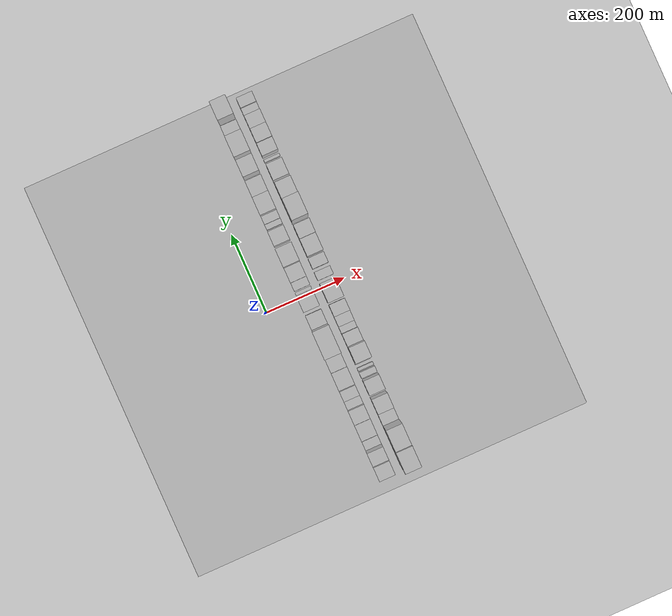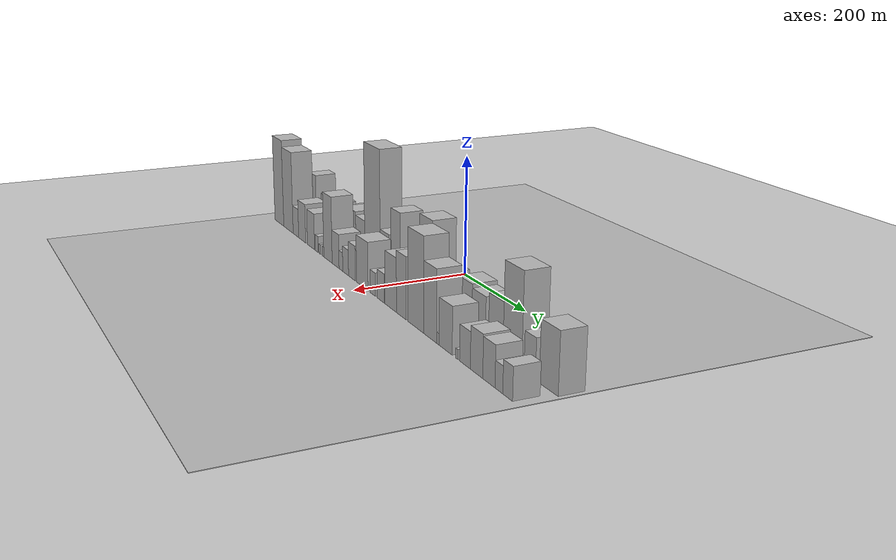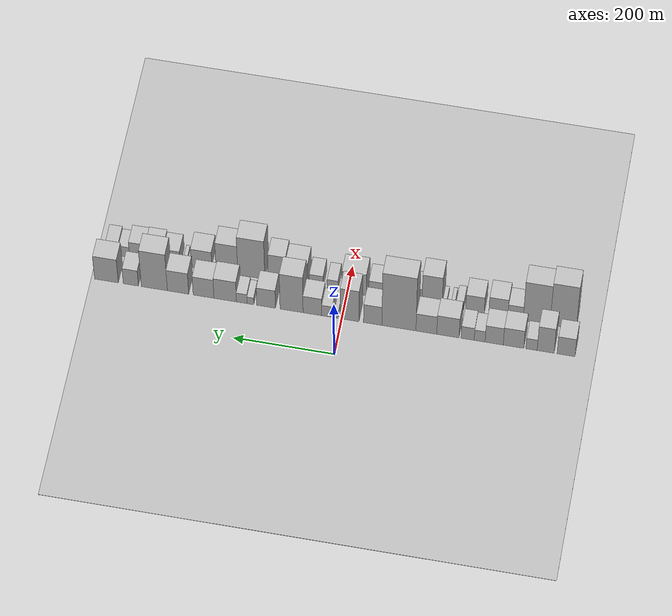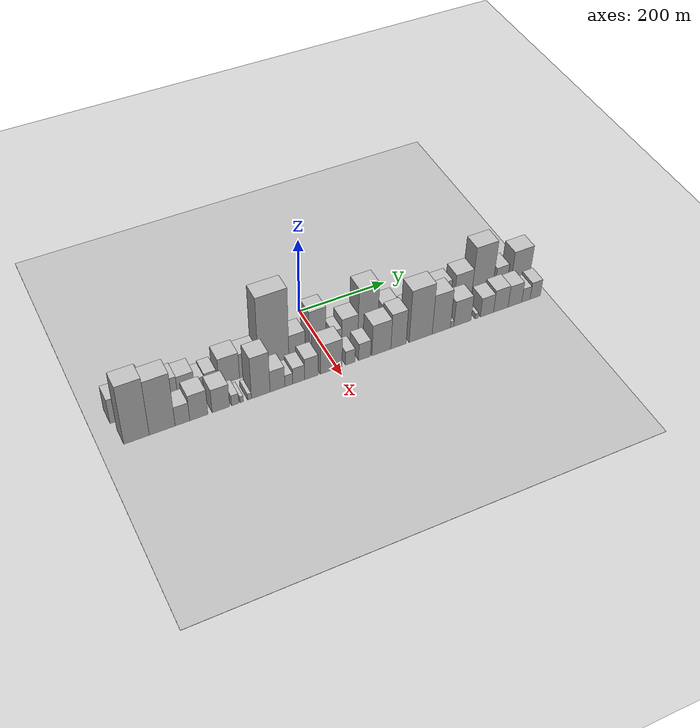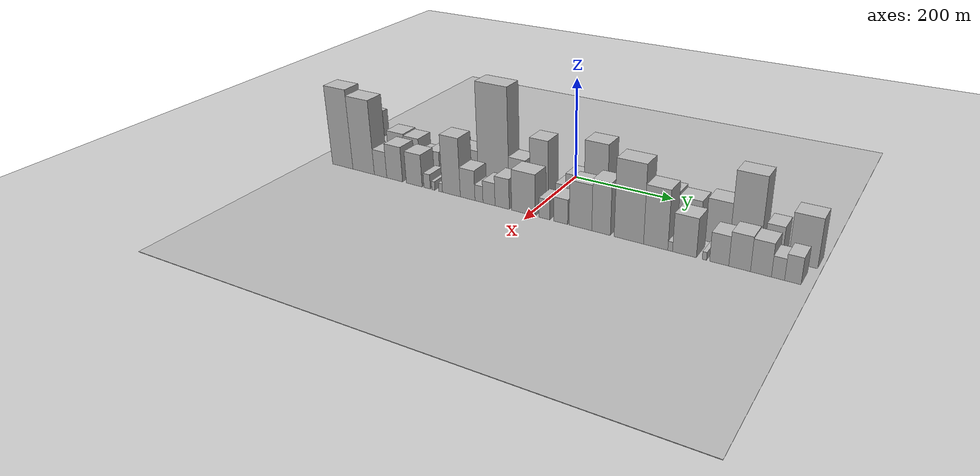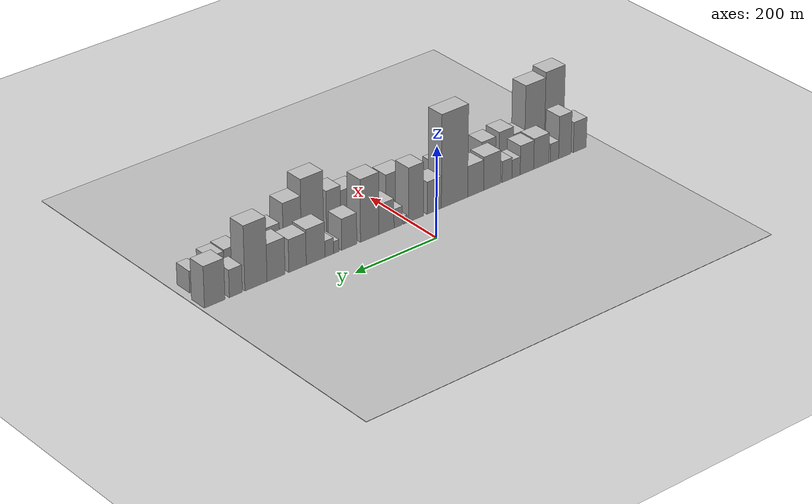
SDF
<sdf version="1.6">
 <world name="default">
  <include><name>ground_plane_1</name><uri>model://HANNAS_ground_plane</uri></include>
  <include>
   <name>ground_plane_2</name>
   <uri>model://HANNAS_ground_plane</uri>
   <pose>100 0 0  0 0 0</pose>
  </include>
  <model name="building_1">
   <static>1</static>
   <pose>100.0000 -442.4318 0 0.000000 0.000000 0.000000</pose>
   <link name="link">
    <pose>0 0 34.50 0 0 0</pose>
    <collision name="collision"><geometry><box><size>40.0000 35.1365 69.0000</size></box></geometry></collision>
    <visual name="visual">
     <cast_shadows>0</cast_shadows>
     <geometry><box><size>40.0000 35.1365 69.0000</size></box></geometry>
     <material>
      <script>
       <uri>model://HANNAS_wall/materials/scripts</uri>
       <uri>model://HANNAS_wall/materials/textures</uri>
       <name>vrc/HANNAS_wall</name>
      </script>
     </material>
    </visual>
   </link>
  </model>
  <model name="building_2">
   <static>1</static>
   <pose>100.0000 -402.2264 0 0.000000 0.000000 0.000000</pose>
   <link name="link">
    <pose>0 0 48.00 0 0 0</pose>
    <collision name="collision"><geometry><box><size>40.0000 33.2743 96.0000</size></box></geometry></collision>
    <visual name="visual">
     <cast_shadows>0</cast_shadows>
     <geometry><box><size>40.0000 33.2743 96.0000</size></box></geometry>
     <material>
      <script>
       <uri>model://HANNAS_wall/materials/scripts</uri>
       <uri>model://HANNAS_wall/materials/textures</uri>
       <name>vrc/HANNAS_wall</name>
      </script>
     </material>
    </visual>
   </link>
  </model>
  <model name="building_3">
   <static>1</static>
   <pose>100.0000 -374.4544 0 0.000000 0.000000 0.000000</pose>
   <link name="link">
    <pose>0 0 21.00 0 0 0</pose>
    <collision name="collision"><geometry><box><size>40.0000 22.2697 42.0000</size></box></geometry></collision>
    <visual name="visual">
     <cast_shadows>0</cast_shadows>
     <geometry><box><size>40.0000 22.2697 42.0000</size></box></geometry>
     <material>
      <script>
       <uri>model://HANNAS_wall/materials/scripts</uri>
       <uri>model://HANNAS_wall/materials/textures</uri>
       <name>vrc/HANNAS_wall</name>
      </script>
     </material>
    </visual>
   </link>
  </model>
  <model name="building_4">
   <static>1</static>
   <pose>100.0000 -339.1248 0 0.000000 0.000000 0.000000</pose>
   <link name="link">
    <pose>0 0 34.50 0 0 0</pose>
    <collision name="collision"><geometry><box><size>40.0000 40.3894 69.0000</size></box></geometry></collision>
    <visual name="visual">
     <cast_shadows>0</cast_shadows>
     <geometry><box><size>40.0000 40.3894 69.0000</size></box></geometry>
     <material>
      <script>
       <uri>model://HANNAS_wall/materials/scripts</uri>
       <uri>model://HANNAS_wall/materials/textures</uri>
       <name>vrc/HANNAS_wall</name>
      </script>
     </material>
    </visual>
   </link>
  </model>
  <model name="building_5">
   <static>1</static>
   <pose>100.0000 -301.0386 0 0.000000 0.000000 0.000000</pose>
   <link name="link">
    <pose>0 0 33.00 0 0 0</pose>
    <collision name="collision"><geometry><box><size>40.0000 35.7828 66.0000</size></box></geometry></collision>
    <visual name="visual">
     <cast_shadows>0</cast_shadows>
     <geometry><box><size>40.0000 35.7828 66.0000</size></box></geometry>
     <material>
      <script>
       <uri>model://HANNAS_wall/materials/scripts</uri>
       <uri>model://HANNAS_wall/materials/textures</uri>
       <name>vrc/HANNAS_wall</name>
      </script>
     </material>
    </visual>
   </link>
  </model>
  <model name="building_6">
   <static>1</static>
   <pose>100.0000 -272.4579 0 0.000000 0.000000 0.000000</pose>
   <link name="link">
    <pose>0 0 21.00 0 0 0</pose>
    <collision name="collision"><geometry><box><size>40.0000 21.3786 42.0000</size></box></geometry></collision>
    <visual name="visual">
     <cast_shadows>0</cast_shadows>
     <geometry><box><size>40.0000 21.3786 42.0000</size></box></geometry>
     <material>
      <script>
       <uri>model://HANNAS_wall/materials/scripts</uri>
       <uri>model://HANNAS_wall/materials/textures</uri>
       <name>vrc/HANNAS_wall</name>
      </script>
     </material>
    </visual>
   </link>
  </model>
  <model name="building_7">
   <static>1</static>
   <pose>100.0000 -248.8180 0 0.000000 0.000000 0.000000</pose>
   <link name="link">
    <pose>0 0 24.00 0 0 0</pose>
    <collision name="collision"><geometry><box><size>40.0000 25.9014 48.0000</size></box></geometry></collision>
    <visual name="visual">
     <cast_shadows>0</cast_shadows>
     <geometry><box><size>40.0000 25.9014 48.0000</size></box></geometry>
     <material>
      <script>
       <uri>model://HANNAS_wall/materials/scripts</uri>
       <uri>model://HANNAS_wall/materials/textures</uri>
       <name>vrc/HANNAS_wall</name>
      </script>
     </material>
    </visual>
   </link>
  </model>
  <model name="building_8">
   <static>1</static>
   <pose>100.0000 -209.7865 0 0.000000 0.000000 0.000000</pose>
   <link name="link">
    <pose>0 0 37.50 0 0 0</pose>
    <collision name="collision"><geometry><box><size>40.0000 44.1616 75.0000</size></box></geometry></collision>
    <visual name="visual">
     <cast_shadows>0</cast_shadows>
     <geometry><box><size>40.0000 44.1616 75.0000</size></box></geometry>
     <material>
      <script>
       <uri>model://HANNAS_wall/materials/scripts</uri>
       <uri>model://HANNAS_wall/materials/textures</uri>
       <name>vrc/HANNAS_wall</name>
      </script>
     </material>
    </visual>
   </link>
  </model>
  <model name="building_9">
   <static>1</static>
   <pose>100.0000 -167.1421 0 0.000000 0.000000 0.000000</pose>
   <link name="link">
    <pose>0 0 34.50 0 0 0</pose>
    <collision name="collision"><geometry><box><size>40.0000 41.1272 69.0000</size></box></geometry></collision>
    <visual name="visual">
     <cast_shadows>0</cast_shadows>
     <geometry><box><size>40.0000 41.1272 69.0000</size></box></geometry>
     <material>
      <script>
       <uri>model://HANNAS_wall/materials/scripts</uri>
       <uri>model://HANNAS_wall/materials/textures</uri>
       <name>vrc/HANNAS_wall</name>
      </script>
     </material>
    </visual>
   </link>
  </model>
  <model name="building_10">
   <static>1</static>
   <pose>100.0000 -112.8907 0 0.000000 0.000000 0.000000</pose>
   <link name="link">
    <pose>0 0 103.50 0 0 0</pose>
    <collision name="collision"><geometry><box><size>40.0000 67.3757 207.0000</size></box></geometry></collision>
    <visual name="visual">
     <cast_shadows>0</cast_shadows>
     <geometry><box><size>40.0000 67.3757 207.0000</size></box></geometry>
     <material>
      <script>
       <uri>model://HANNAS_wall/materials/scripts</uri>
       <uri>model://HANNAS_wall/materials/textures</uri>
       <name>vrc/HANNAS_wall</name>
      </script>
     </material>
    </visual>
   </link>
  </model>
  <model name="building_11">
   <static>1</static>
   <pose>100.0000 -61.0722 0 0.000000 0.000000 0.000000</pose>
   <link name="link">
    <pose>0 0 36.00 0 0 0</pose>
    <collision name="collision"><geometry><box><size>40.0000 36.2612 72.0000</size></box></geometry></collision>
    <visual name="visual">
     <cast_shadows>0</cast_shadows>
     <geometry><box><size>40.0000 36.2612 72.0000</size></box></geometry>
     <material>
      <script>
       <uri>model://HANNAS_wall/materials/scripts</uri>
       <uri>model://HANNAS_wall/materials/textures</uri>
       <name>vrc/HANNAS_wall</name>
      </script>
     </material>
    </visual>
   </link>
  </model>
  <model name="building_12">
   <static>1</static>
   <pose>100.0000 -15.1364 0 0.000000 0.000000 0.000000</pose>
   <link name="link">
    <pose>0 0 60.00 0 0 0</pose>
    <collision name="collision"><geometry><box><size>40.0000 37.6105 120.0000</size></box></geometry></collision>
    <visual name="visual">
     <cast_shadows>0</cast_shadows>
     <geometry><box><size>40.0000 37.6105 120.0000</size></box></geometry>
     <material>
      <script>
       <uri>model://HANNAS_wall/materials/scripts</uri>
       <uri>model://HANNAS_wall/materials/textures</uri>
       <name>vrc/HANNAS_wall</name>
      </script>
     </material>
    </visual>
   </link>
  </model>
  <model name="building_13">
   <static>1</static>
   <pose>100.0000 11.7699 0 0.000000 0.000000 0.000000</pose>
   <link name="link">
    <pose>0 0 9.00 0 0 0</pose>
    <collision name="collision"><geometry><box><size>40.0000 8.2020 18.0000</size></box></geometry></collision>
    <visual name="visual">
     <cast_shadows>0</cast_shadows>
     <geometry><box><size>40.0000 8.2020 18.0000</size></box></geometry>
     <material>
      <script>
       <uri>model://HANNAS_wall/materials/scripts</uri>
       <uri>model://HANNAS_wall/materials/textures</uri>
       <name>vrc/HANNAS_wall</name>
      </script>
     </material>
    </visual>
   </link>
  </model>
  <model name="building_14">
   <static>1</static>
   <pose>100.0000 29.4151 0 0.000000 0.000000 0.000000</pose>
   <link name="link">
    <pose>0 0 21.00 0 0 0</pose>
    <collision name="collision"><geometry><box><size>40.0000 21.0884 42.0000</size></box></geometry></collision>
    <visual name="visual">
     <cast_shadows>0</cast_shadows>
     <geometry><box><size>40.0000 21.0884 42.0000</size></box></geometry>
     <material>
      <script>
       <uri>model://HANNAS_wall/materials/scripts</uri>
       <uri>model://HANNAS_wall/materials/textures</uri>
       <name>vrc/HANNAS_wall</name>
      </script>
     </material>
    </visual>
   </link>
  </model>
  <model name="building_15">
   <static>1</static>
   <pose>100.0000 58.5209 0 0.000000 0.000000 0.000000</pose>
   <link name="link">
    <pose>0 0 33.00 0 0 0</pose>
    <collision name="collision"><geometry><box><size>40.0000 37.1232 66.0000</size></box></geometry></collision>
    <visual name="visual">
     <cast_shadows>0</cast_shadows>
     <geometry><box><size>40.0000 37.1232 66.0000</size></box></geometry>
     <material>
      <script>
       <uri>model://HANNAS_wall/materials/scripts</uri>
       <uri>model://HANNAS_wall/materials/textures</uri>
       <name>vrc/HANNAS_wall</name>
      </script>
     </material>
    </visual>
   </link>
  </model>
  <model name="building_16">
   <static>1</static>
   <pose>100.0000 99.9621 0 0.000000 0.000000 0.000000</pose>
   <link name="link">
    <pose>0 0 69.00 0 0 0</pose>
    <collision name="collision"><geometry><box><size>40.0000 45.7592 138.0000</size></box></geometry></collision>
    <visual name="visual">
     <cast_shadows>0</cast_shadows>
     <geometry><box><size>40.0000 45.7592 138.0000</size></box></geometry>
     <material>
      <script>
       <uri>model://HANNAS_wall/materials/scripts</uri>
       <uri>model://HANNAS_wall/materials/textures</uri>
       <name>vrc/HANNAS_wall</name>
      </script>
     </material>
    </visual>
   </link>
  </model>
  <model name="building_17">
   <static>1</static>
   <pose>100.0000 150.4226 0 0.000000 0.000000 0.000000</pose>
   <link name="link">
    <pose>0 0 34.50 0 0 0</pose>
    <collision name="collision"><geometry><box><size>40.0000 37.1618 69.0000</size></box></geometry></collision>
    <visual name="visual">
     <cast_shadows>0</cast_shadows>
     <geometry><box><size>40.0000 37.1618 69.0000</size></box></geometry>
     <material>
      <script>
       <uri>model://HANNAS_wall/materials/scripts</uri>
       <uri>model://HANNAS_wall/materials/textures</uri>
       <name>vrc/HANNAS_wall</name>
      </script>
     </material>
    </visual>
   </link>
  </model>
  <model name="building_18">
   <static>1</static>
   <pose>100.0000 181.7265 0 0.000000 0.000000 0.000000</pose>
   <link name="link">
    <pose>0 0 13.50 0 0 0</pose>
    <collision name="collision"><geometry><box><size>40.0000 13.4458 27.0000</size></box></geometry></collision>
    <visual name="visual">
     <cast_shadows>0</cast_shadows>
     <geometry><box><size>40.0000 13.4458 27.0000</size></box></geometry>
     <material>
      <script>
       <uri>model://HANNAS_wall/materials/scripts</uri>
       <uri>model://HANNAS_wall/materials/textures</uri>
       <name>vrc/HANNAS_wall</name>
      </script>
     </material>
    </visual>
   </link>
  </model>
  <model name="building_19">
   <static>1</static>
   <pose>100.0000 198.9371 0 0.000000 0.000000 0.000000</pose>
   <link name="link">
    <pose>0 0 18.00 0 0 0</pose>
    <collision name="collision"><geometry><box><size>40.0000 20.9755 36.0000</size></box></geometry></collision>
    <visual name="visual">
     <cast_shadows>0</cast_shadows>
     <geometry><box><size>40.0000 20.9755 36.0000</size></box></geometry>
     <material>
      <script>
       <uri>model://HANNAS_wall/materials/scripts</uri>
       <uri>model://HANNAS_wall/materials/textures</uri>
       <name>vrc/HANNAS_wall</name>
      </script>
     </material>
    </visual>
   </link>
  </model>
  <model name="building_20">
   <static>1</static>
   <pose>100.0000 231.9323 0 0.000000 0.000000 0.000000</pose>
   <link name="link">
    <pose>0 0 39.00 0 0 0</pose>
    <collision name="collision"><geometry><box><size>40.0000 45.0149 78.0000</size></box></geometry></collision>
    <visual name="visual">
     <cast_shadows>0</cast_shadows>
     <geometry><box><size>40.0000 45.0149 78.0000</size></box></geometry>
     <material>
      <script>
       <uri>model://HANNAS_wall/materials/scripts</uri>
       <uri>model://HANNAS_wall/materials/textures</uri>
       <name>vrc/HANNAS_wall</name>
      </script>
     </material>
    </visual>
   </link>
  </model>
  <model name="building_21">
   <static>1</static>
   <pose>100.0000 275.1344 0 0.000000 0.000000 0.000000</pose>
   <link name="link">
    <pose>0 0 36.00 0 0 0</pose>
    <collision name="collision"><geometry><box><size>40.0000 41.3893 72.0000</size></box></geometry></collision>
    <visual name="visual">
     <cast_shadows>0</cast_shadows>
     <geometry><box><size>40.0000 41.3893 72.0000</size></box></geometry>
     <material>
      <script>
       <uri>model://HANNAS_wall/materials/scripts</uri>
       <uri>model://HANNAS_wall/materials/textures</uri>
       <name>vrc/HANNAS_wall</name>
      </script>
     </material>
    </visual>
   </link>
  </model>
  <model name="building_22">
   <static>1</static>
   <pose>100.0000 326.0913 0 0.000000 0.000000 0.000000</pose>
   <link name="link">
    <pose>0 0 40.50 0 0 0</pose>
    <collision name="collision"><geometry><box><size>40.0000 42.5245 81.0000</size></box></geometry></collision>
    <visual name="visual">
     <cast_shadows>0</cast_shadows>
     <geometry><box><size>40.0000 42.5245 81.0000</size></box></geometry>
     <material>
      <script>
       <uri>model://HANNAS_wall/materials/scripts</uri>
       <uri>model://HANNAS_wall/materials/textures</uri>
       <name>vrc/HANNAS_wall</name>
      </script>
     </material>
    </visual>
   </link>
  </model>
  <model name="building_23">
   <static>1</static>
   <pose>100.0000 373.3401 0 0.000000 0.000000 0.000000</pose>
   <link name="link">
    <pose>0 0 70.50 0 0 0</pose>
    <collision name="collision"><geometry><box><size>40.0000 51.9733 141.0000</size></box></geometry></collision>
    <visual name="visual">
     <cast_shadows>0</cast_shadows>
     <geometry><box><size>40.0000 51.9733 141.0000</size></box></geometry>
     <material>
      <script>
       <uri>model://HANNAS_wall/materials/scripts</uri>
       <uri>model://HANNAS_wall/materials/textures</uri>
       <name>vrc/HANNAS_wall</name>
      </script>
     </material>
    </visual>
   </link>
  </model>
  <model name="building_24">
   <static>1</static>
   <pose>100.0000 420.4042 0 0.000000 0.000000 0.000000</pose>
   <link name="link">
    <pose>0 0 30.00 0 0 0</pose>
    <collision name="collision"><geometry><box><size>40.0000 30.1548 60.0000</size></box></geometry></collision>
    <visual name="visual">
     <cast_shadows>0</cast_shadows>
     <geometry><box><size>40.0000 30.1548 60.0000</size></box></geometry>
     <material>
      <script>
       <uri>model://HANNAS_wall/materials/scripts</uri>
       <uri>model://HANNAS_wall/materials/textures</uri>
       <name>vrc/HANNAS_wall</name>
      </script>
     </material>
    </visual>
   </link>
  </model>
  <model name="building_25">
   <static>1</static>
   <pose>100.0000 469.1745 0 0.000000 0.000000 0.000000</pose>
   <link name="link">
    <pose>0 0 45.00 0 0 0</pose>
    <collision name="collision"><geometry><box><size>40.0000 47.3858 90.0000</size></box></geometry></collision>
    <visual name="visual">
     <cast_shadows>0</cast_shadows>
     <geometry><box><size>40.0000 47.3858 90.0000</size></box></geometry>
     <material>
      <script>
       <uri>model://HANNAS_wall/materials/scripts</uri>
       <uri>model://HANNAS_wall/materials/textures</uri>
       <name>vrc/HANNAS_wall</name>
      </script>
     </material>
    </visual>
   </link>
  </model>
  <model name="building_26">
   <static>1</static>
   <pose>160.0000 -427.1325 0 0.000000 0.000000 0.000000</pose>
   <link name="link">
    <pose>0 0 82.50 0 0 0</pose>
    <collision name="collision"><geometry><box><size>40.0000 51.7349 165.0000</size></box></geometry></collision>
    <visual name="visual">
     <cast_shadows>0</cast_shadows>
     <geometry><box><size>40.0000 51.7349 165.0000</size></box></geometry>
     <material>
      <script>
       <uri>model://HANNAS_wall/materials/scripts</uri>
       <uri>model://HANNAS_wall/materials/textures</uri>
       <name>vrc/HANNAS_wall</name>
      </script>
     </material>
    </visual>
   </link>
  </model>
  <model name="building_27">
   <static>1</static>
   <pose>160.0000 -374.7211 0 0.000000 0.000000 0.000000</pose>
   <link name="link">
    <pose>0 0 76.50 0 0 0</pose>
    <collision name="collision"><geometry><box><size>40.0000 53.0879 153.0000</size></box></geometry></collision>
    <visual name="visual">
     <cast_shadows>0</cast_shadows>
     <geometry><box><size>40.0000 53.0879 153.0000</size></box></geometry>
     <material>
      <script>
       <uri>model://HANNAS_wall/materials/scripts</uri>
       <uri>model://HANNAS_wall/materials/textures</uri>
       <name>vrc/HANNAS_wall</name>
      </script>
     </material>
    </visual>
   </link>
  </model>
  <model name="building_28">
   <static>1</static>
   <pose>160.0000 -333.0660 0 0.000000 0.000000 0.000000</pose>
   <link name="link">
    <pose>0 0 27.00 0 0 0</pose>
    <collision name="collision"><geometry><box><size>40.0000 30.2224 54.0000</size></box></geometry></collision>
    <visual name="visual">
     <cast_shadows>0</cast_shadows>
     <geometry><box><size>40.0000 30.2224 54.0000</size></box></geometry>
     <material>
      <script>
       <uri>model://HANNAS_wall/materials/scripts</uri>
       <uri>model://HANNAS_wall/materials/textures</uri>
       <name>vrc/HANNAS_wall</name>
      </script>
     </material>
    </visual>
   </link>
  </model>
  <model name="building_29">
   <static>1</static>
   <pose>160.0000 -299.0715 0 0.000000 0.000000 0.000000</pose>
   <link name="link">
    <pose>0 0 36.00 0 0 0</pose>
    <collision name="collision"><geometry><box><size>40.0000 37.7665 72.0000</size></box></geometry></collision>
    <visual name="visual">
     <cast_shadows>0</cast_shadows>
     <geometry><box><size>40.0000 37.7665 72.0000</size></box></geometry>
     <material>
      <script>
       <uri>model://HANNAS_wall/materials/scripts</uri>
       <uri>model://HANNAS_wall/materials/textures</uri>
       <name>vrc/HANNAS_wall</name>
      </script>
     </material>
    </visual>
   </link>
  </model>
  <model name="building_30">
   <static>1</static>
   <pose>160.0000 -252.7341 0 0.000000 0.000000 0.000000</pose>
   <link name="link">
    <pose>0 0 33.00 0 0 0</pose>
    <collision name="collision"><geometry><box><size>40.0000 36.9082 66.0000</size></box></geometry></collision>
    <visual name="visual">
     <cast_shadows>0</cast_shadows>
     <geometry><box><size>40.0000 36.9082 66.0000</size></box></geometry>
     <material>
      <script>
       <uri>model://HANNAS_wall/materials/scripts</uri>
       <uri>model://HANNAS_wall/materials/textures</uri>
       <name>vrc/HANNAS_wall</name>
      </script>
     </material>
    </visual>
   </link>
  </model>
  <model name="building_31">
   <static>1</static>
   <pose>160.0000 -222.7568 0 0.000000 0.000000 0.000000</pose>
   <link name="link">
    <pose>0 0 15.00 0 0 0</pose>
    <collision name="collision"><geometry><box><size>40.0000 15.0465 30.0000</size></box></geometry></collision>
    <visual name="visual">
     <cast_shadows>0</cast_shadows>
     <geometry><box><size>40.0000 15.0465 30.0000</size></box></geometry>
     <material>
      <script>
       <uri>model://HANNAS_wall/materials/scripts</uri>
       <uri>model://HANNAS_wall/materials/textures</uri>
       <name>vrc/HANNAS_wall</name>
      </script>
     </material>
    </visual>
   </link>
  </model>
  <model name="building_32">
   <static>1</static>
   <pose>160.0000 -208.5569 0 0.000000 0.000000 0.000000</pose>
   <link name="link">
    <pose>0 0 9.00 0 0 0</pose>
    <collision name="collision"><geometry><box><size>40.0000 7.3534 18.0000</size></box></geometry></collision>
    <visual name="visual">
     <cast_shadows>0</cast_shadows>
     <geometry><box><size>40.0000 7.3534 18.0000</size></box></geometry>
     <material>
      <script>
       <uri>model://HANNAS_wall/materials/scripts</uri>
       <uri>model://HANNAS_wall/materials/textures</uri>
       <name>vrc/HANNAS_wall</name>
      </script>
     </material>
    </visual>
   </link>
  </model>
  <model name="building_33">
   <static>1</static>
   <pose>160.0000 -191.8985 0 0.000000 0.000000 0.000000</pose>
   <link name="link">
    <pose>0 0 9.00 0 0 0</pose>
    <collision name="collision"><geometry><box><size>40.0000 7.9632 18.0000</size></box></geometry></collision>
    <visual name="visual">
     <cast_shadows>0</cast_shadows>
     <geometry><box><size>40.0000 7.9632 18.0000</size></box></geometry>
     <material>
      <script>
       <uri>model://HANNAS_wall/materials/scripts</uri>
       <uri>model://HANNAS_wall/materials/textures</uri>
       <name>vrc/HANNAS_wall</name>
      </script>
     </material>
    </visual>
   </link>
  </model>
  <model name="building_34">
   <static>1</static>
   <pose>160.0000 -167.8837 0 0.000000 0.000000 0.000000</pose>
   <link name="link">
    <pose>0 0 58.50 0 0 0</pose>
    <collision name="collision"><geometry><box><size>40.0000 40.0664 117.0000</size></box></geometry></collision>
    <visual name="visual">
     <cast_shadows>0</cast_shadows>
     <geometry><box><size>40.0000 40.0664 117.0000</size></box></geometry>
     <material>
      <script>
       <uri>model://HANNAS_wall/materials/scripts</uri>
       <uri>model://HANNAS_wall/materials/textures</uri>
       <name>vrc/HANNAS_wall</name>
      </script>
     </material>
    </visual>
   </link>
  </model>
  <model name="building_35">
   <static>1</static>
   <pose>160.0000 -131.7753 0 0.000000 0.000000 0.000000</pose>
   <link name="link">
    <pose>0 0 30.00 0 0 0</pose>
    <collision name="collision"><geometry><box><size>40.0000 32.1505 60.0000</size></box></geometry></collision>
    <visual name="visual">
     <cast_shadows>0</cast_shadows>
     <geometry><box><size>40.0000 32.1505 60.0000</size></box></geometry>
     <material>
      <script>
       <uri>model://HANNAS_wall/materials/scripts</uri>
       <uri>model://HANNAS_wall/materials/textures</uri>
       <name>vrc/HANNAS_wall</name>
      </script>
     </material>
    </visual>
   </link>
  </model>
  <model name="building_36">
   <static>1</static>
   <pose>160.0000 -107.0788 0 0.000000 0.000000 0.000000</pose>
   <link name="link">
    <pose>0 0 16.50 0 0 0</pose>
    <collision name="collision"><geometry><box><size>40.0000 17.2424 33.0000</size></box></geometry></collision>
    <visual name="visual">
     <cast_shadows>0</cast_shadows>
     <geometry><box><size>40.0000 17.2424 33.0000</size></box></geometry>
     <material>
      <script>
       <uri>model://HANNAS_wall/materials/scripts</uri>
       <uri>model://HANNAS_wall/materials/textures</uri>
       <name>vrc/HANNAS_wall</name>
      </script>
     </material>
    </visual>
   </link>
  </model>
  <model name="building_37">
   <static>1</static>
   <pose>160.0000 -85.5093 0 0.000000 0.000000 0.000000</pose>
   <link name="link">
    <pose>0 0 22.50 0 0 0</pose>
    <collision name="collision"><geometry><box><size>40.0000 25.8966 45.0000</size></box></geometry></collision>
    <visual name="visual">
     <cast_shadows>0</cast_shadows>
     <geometry><box><size>40.0000 25.8966 45.0000</size></box></geometry>
     <material>
      <script>
       <uri>model://HANNAS_wall/materials/scripts</uri>
       <uri>model://HANNAS_wall/materials/textures</uri>
       <name>vrc/HANNAS_wall</name>
      </script>
     </material>
    </visual>
   </link>
  </model>
  <model name="building_38">
   <static>1</static>
   <pose>160.0000 -57.5142 0 0.000000 0.000000 0.000000</pose>
   <link name="link">
    <pose>0 0 30.00 0 0 0</pose>
    <collision name="collision"><geometry><box><size>40.0000 30.0936 60.0000</size></box></geometry></collision>
    <visual name="visual">
     <cast_shadows>0</cast_shadows>
     <geometry><box><size>40.0000 30.0936 60.0000</size></box></geometry>
     <material>
      <script>
       <uri>model://HANNAS_wall/materials/scripts</uri>
       <uri>model://HANNAS_wall/materials/textures</uri>
       <name>vrc/HANNAS_wall</name>
      </script>
     </material>
    </visual>
   </link>
  </model>
  <model name="building_39">
   <static>1</static>
   <pose>160.0000 -13.2434 0 0.000000 0.000000 0.000000</pose>
   <link name="link">
    <pose>0 0 40.50 0 0 0</pose>
    <collision name="collision"><geometry><box><size>40.0000 48.4478 81.0000</size></box></geometry></collision>
    <visual name="visual">
     <cast_shadows>0</cast_shadows>
     <geometry><box><size>40.0000 48.4478 81.0000</size></box></geometry>
     <material>
      <script>
       <uri>model://HANNAS_wall/materials/scripts</uri>
       <uri>model://HANNAS_wall/materials/textures</uri>
       <name>vrc/HANNAS_wall</name>
      </script>
     </material>
    </visual>
   </link>
  </model>
  <model name="building_40">
   <static>1</static>
   <pose>160.0000 29.7119 0 0.000000 0.000000 0.000000</pose>
   <link name="link">
    <pose>0 0 19.50 0 0 0</pose>
    <collision name="collision"><geometry><box><size>40.0000 21.4628 39.0000</size></box></geometry></collision>
    <visual name="visual">
     <cast_shadows>0</cast_shadows>
     <geometry><box><size>40.0000 21.4628 39.0000</size></box></geometry>
     <material>
      <script>
       <uri>model://HANNAS_wall/materials/scripts</uri>
       <uri>model://HANNAS_wall/materials/textures</uri>
       <name>vrc/HANNAS_wall</name>
      </script>
     </material>
    </visual>
   </link>
  </model>
  <model name="building_41">
   <static>1</static>
   <pose>160.0000 62.1125 0 0.000000 0.000000 0.000000</pose>
   <link name="link">
    <pose>0 0 24.00 0 0 0</pose>
    <collision name="collision"><geometry><box><size>40.0000 27.3385 48.0000</size></box></geometry></collision>
    <visual name="visual">
     <cast_shadows>0</cast_shadows>
     <geometry><box><size>40.0000 27.3385 48.0000</size></box></geometry>
     <material>
      <script>
       <uri>model://HANNAS_wall/materials/scripts</uri>
       <uri>model://HANNAS_wall/materials/textures</uri>
       <name>vrc/HANNAS_wall</name>
      </script>
     </material>
    </visual>
   </link>
  </model>
  <model name="building_42">
   <static>1</static>
   <pose>160.0000 100.5897 0 0.000000 0.000000 0.000000</pose>
   <link name="link">
    <pose>0 0 43.50 0 0 0</pose>
    <collision name="collision"><geometry><box><size>40.0000 43.6158 87.0000</size></box></geometry></collision>
    <visual name="visual">
     <cast_shadows>0</cast_shadows>
     <geometry><box><size>40.0000 43.6158 87.0000</size></box></geometry>
     <material>
      <script>
       <uri>model://HANNAS_wall/materials/scripts</uri>
       <uri>model://HANNAS_wall/materials/textures</uri>
       <name>vrc/HANNAS_wall</name>
      </script>
     </material>
    </visual>
   </link>
  </model>
  <model name="building_43">
   <static>1</static>
   <pose>160.0000 140.0172 0 0.000000 0.000000 0.000000</pose>
   <link name="link">
    <pose>0 0 49.50 0 0 0</pose>
    <collision name="collision"><geometry><box><size>40.0000 35.2392 99.0000</size></box></geometry></collision>
    <visual name="visual">
     <cast_shadows>0</cast_shadows>
     <geometry><box><size>40.0000 35.2392 99.0000</size></box></geometry>
     <material>
      <script>
       <uri>model://HANNAS_wall/materials/scripts</uri>
       <uri>model://HANNAS_wall/materials/textures</uri>
       <name>vrc/HANNAS_wall</name>
      </script>
     </material>
    </visual>
   </link>
  </model>
  <model name="building_44">
   <static>1</static>
   <pose>160.0000 191.6760 0 0.000000 0.000000 0.000000</pose>
   <link name="link">
    <pose>0 0 73.50 0 0 0</pose>
    <collision name="collision"><geometry><box><size>40.0000 54.0785 147.0000</size></box></geometry></collision>
    <visual name="visual">
     <cast_shadows>0</cast_shadows>
     <geometry><box><size>40.0000 54.0785 147.0000</size></box></geometry>
     <material>
      <script>
       <uri>model://HANNAS_wall/materials/scripts</uri>
       <uri>model://HANNAS_wall/materials/textures</uri>
       <name>vrc/HANNAS_wall</name>
      </script>
     </material>
    </visual>
   </link>
  </model>
  <model name="building_45">
   <static>1</static>
   <pose>160.0000 240.3611 0 0.000000 0.000000 0.000000</pose>
   <link name="link">
    <pose>0 0 55.50 0 0 0</pose>
    <collision name="collision"><geometry><box><size>40.0000 43.2916 111.0000</size></box></geometry></collision>
    <visual name="visual">
     <cast_shadows>0</cast_shadows>
     <geometry><box><size>40.0000 43.2916 111.0000</size></box></geometry>
     <material>
      <script>
       <uri>model://HANNAS_wall/materials/scripts</uri>
       <uri>model://HANNAS_wall/materials/textures</uri>
       <name>vrc/HANNAS_wall</name>
      </script>
     </material>
    </visual>
   </link>
  </model>
  <model name="building_46">
   <static>1</static>
   <pose>160.0000 266.1109 0 0.000000 0.000000 0.000000</pose>
   <link name="link">
    <pose>0 0 9.00 0 0 0</pose>
    <collision name="collision"><geometry><box><size>40.0000 8.2079 18.0000</size></box></geometry></collision>
    <visual name="visual">
     <cast_shadows>0</cast_shadows>
     <geometry><box><size>40.0000 8.2079 18.0000</size></box></geometry>
     <material>
      <script>
       <uri>model://HANNAS_wall/materials/scripts</uri>
       <uri>model://HANNAS_wall/materials/textures</uri>
       <name>vrc/HANNAS_wall</name>
      </script>
     </material>
    </visual>
   </link>
  </model>
  <model name="building_47">
   <static>1</static>
   <pose>160.0000 290.9335 0 0.000000 0.000000 0.000000</pose>
   <link name="link">
    <pose>0 0 36.00 0 0 0</pose>
    <collision name="collision"><geometry><box><size>40.0000 41.4375 72.0000</size></box></geometry></collision>
    <visual name="visual">
     <cast_shadows>0</cast_shadows>
     <geometry><box><size>40.0000 41.4375 72.0000</size></box></geometry>
     <material>
      <script>
       <uri>model://HANNAS_wall/materials/scripts</uri>
       <uri>model://HANNAS_wall/materials/textures</uri>
       <name>vrc/HANNAS_wall</name>
      </script>
     </material>
    </visual>
   </link>
  </model>
  <model name="building_48">
   <static>1</static>
   <pose>160.0000 325.3472 0 0.000000 0.000000 0.000000</pose>
   <link name="link">
    <pose>0 0 7.50 0 0 0</pose>
    <collision name="collision"><geometry><box><size>40.0000 7.3900 15.0000</size></box></geometry></collision>
    <visual name="visual">
     <cast_shadows>0</cast_shadows>
     <geometry><box><size>40.0000 7.3900 15.0000</size></box></geometry>
     <material>
      <script>
       <uri>model://HANNAS_wall/materials/scripts</uri>
       <uri>model://HANNAS_wall/materials/textures</uri>
       <name>vrc/HANNAS_wall</name>
      </script>
     </material>
    </visual>
   </link>
  </model>
  <model name="building_49">
   <static>1</static>
   <pose>160.0000 350.1020 0 0.000000 0.000000 0.000000</pose>
   <link name="link">
    <pose>0 0 27.00 0 0 0</pose>
    <collision name="collision"><geometry><box><size>40.0000 32.1195 54.0000</size></box></geometry></collision>
    <visual name="visual">
     <cast_shadows>0</cast_shadows>
     <geometry><box><size>40.0000 32.1195 54.0000</size></box></geometry>
     <material>
      <script>
       <uri>model://HANNAS_wall/materials/scripts</uri>
       <uri>model://HANNAS_wall/materials/textures</uri>
       <name>vrc/HANNAS_wall</name>
      </script>
     </material>
    </visual>
   </link>
  </model>
  <model name="building_50">
   <static>1</static>
   <pose>160.0000 383.9727 0 0.000000 0.000000 0.000000</pose>
   <link name="link">
    <pose>0 0 31.50 0 0 0</pose>
    <collision name="collision"><geometry><box><size>40.0000 35.6220 63.0000</size></box></geometry></collision>
    <visual name="visual">
     <cast_shadows>0</cast_shadows>
     <geometry><box><size>40.0000 35.6220 63.0000</size></box></geometry>
     <material>
      <script>
       <uri>model://HANNAS_wall/materials/scripts</uri>
       <uri>model://HANNAS_wall/materials/textures</uri>
       <name>vrc/HANNAS_wall</name>
      </script>
     </material>
    </visual>
   </link>
  </model>
  <model name="building_51">
   <static>1</static>
   <pose>160.0000 418.6131 0 0.000000 0.000000 0.000000</pose>
   <link name="link">
    <pose>0 0 30.00 0 0 0</pose>
    <collision name="collision"><geometry><box><size>40.0000 33.6587 60.0000</size></box></geometry></collision>
    <visual name="visual">
     <cast_shadows>0</cast_shadows>
     <geometry><box><size>40.0000 33.6587 60.0000</size></box></geometry>
     <material>
      <script>
       <uri>model://HANNAS_wall/materials/scripts</uri>
       <uri>model://HANNAS_wall/materials/textures</uri>
       <name>vrc/HANNAS_wall</name>
      </script>
     </material>
    </visual>
   </link>
  </model>
  <model name="building_52">
   <static>1</static>
   <pose>160.0000 445.8387 0 0.000000 0.000000 0.000000</pose>
   <link name="link">
    <pose>0 0 19.50 0 0 0</pose>
    <collision name="collision"><geometry><box><size>40.0000 20.7927 39.0000</size></box></geometry></collision>
    <visual name="visual">
     <cast_shadows>0</cast_shadows>
     <geometry><box><size>40.0000 20.7927 39.0000</size></box></geometry>
     <material>
      <script>
       <uri>model://HANNAS_wall/materials/scripts</uri>
       <uri>model://HANNAS_wall/materials/textures</uri>
       <name>vrc/HANNAS_wall</name>
      </script>
     </material>
    </visual>
   </link>
  </model>
  <model name="building_53">
   <static>1</static>
   <pose>160.0000 469.0914 0 0.000000 0.000000 0.000000</pose>
   <link name="link">
    <pose>0 0 24.00 0 0 0</pose>
    <collision name="collision"><geometry><box><size>40.0000 25.7127 48.0000</size></box></geometry></collision>
    <visual name="visual">
     <cast_shadows>0</cast_shadows>
     <geometry><box><size>40.0000 25.7127 48.0000</size></box></geometry>
     <material>
      <script>
       <uri>model://HANNAS_wall/materials/scripts</uri>
       <uri>model://HANNAS_wall/materials/textures</uri>
       <name>vrc/HANNAS_wall</name>
      </script>
     </material>
    </visual>
   </link>
  </model>
 </world>
</sdf>
